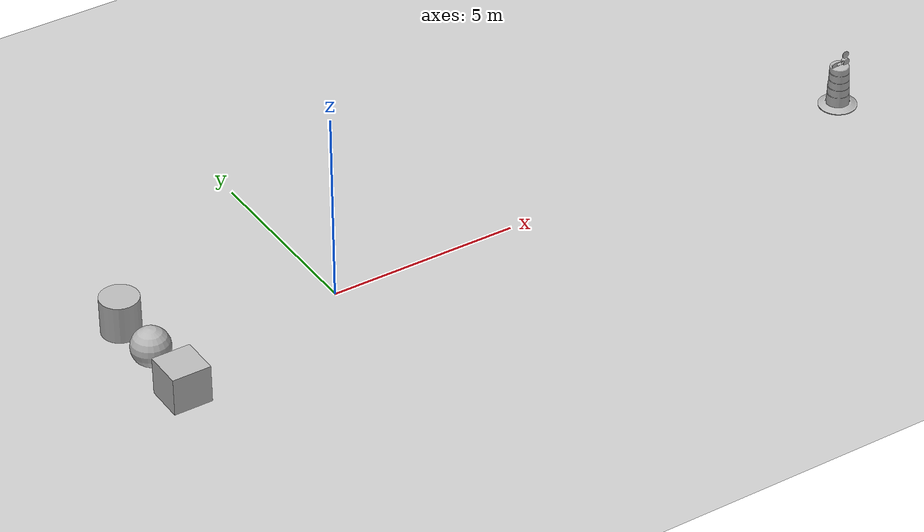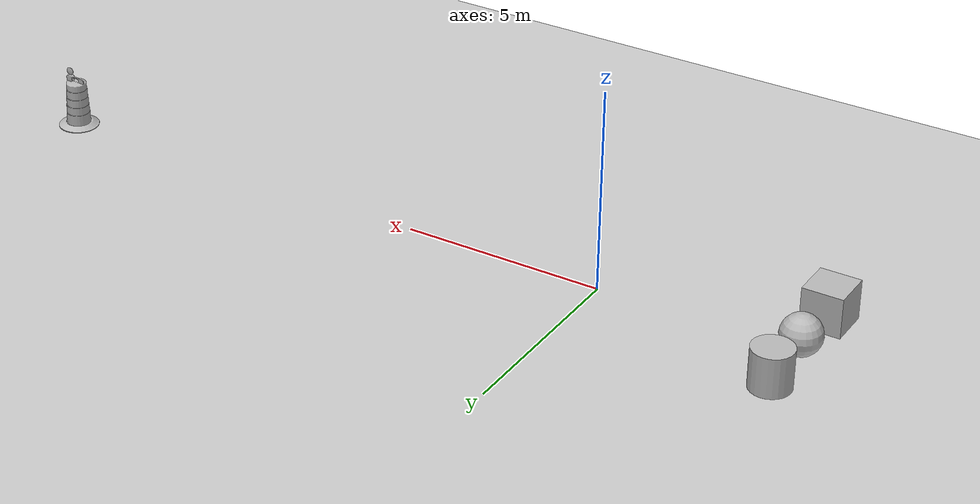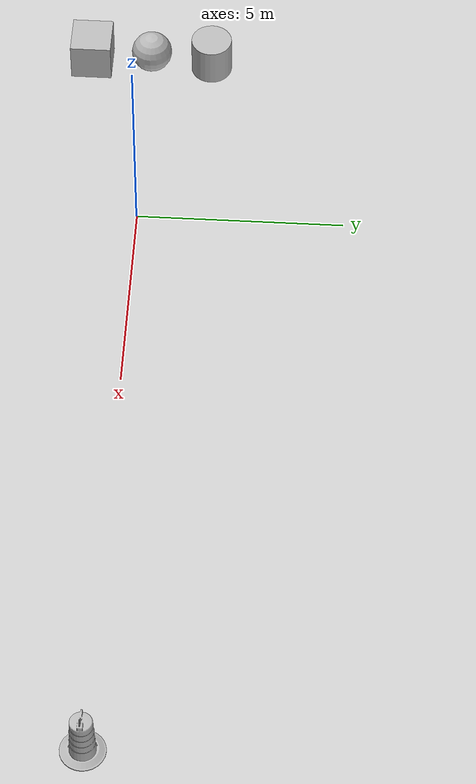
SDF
<sdf version="1.7">
 <world name="default">
  <light name="sun" type="directional">
   <pose>0 0 10 0 -0 0</pose>
   <diffuse>0.8 0.8 0.8 1</diffuse>
   <specular>0.2 0.2 0.2 1</specular>
   <attenuation>
    <range>1000</range>
    <constant>0.9</constant>
    <linear>0.01</linear>
    <quadratic>0.001</quadratic>
   </attenuation>
   <direction>-0.5 0.1 -0.9</direction>
   <spot><inner_angle>0</inner_angle><outer_angle>0</outer_angle><falloff>0</falloff></spot>
  </light>
  <model name="ground_plane">
   <static>1</static>
   <link name="link">
    <collision name="collision">
     <geometry><plane><normal>0 0 1</normal><size>100 100</size></plane></geometry>
     <surface>
      <contact><collide_bitmask>65535</collide_bitmask></contact>
      <friction><ode><mu>100</mu><mu2>50</mu2></ode></friction>
     </surface>
    </collision>
    <visual name="visual">
     <cast_shadows>0</cast_shadows>
     <geometry><plane><normal>0 0 1</normal><size>100 100</size></plane></geometry>
     <material>
      <script><uri>file://media/materials/scripts/gazebo.material</uri><name>Gazebo/Grey</name></script>
     </material>
    </visual>
   </link>
  </model>
  <gravity>0 0 -9.8</gravity>
  <magnetic_field>6e-06 2.3e-05 -4.2e-05</magnetic_field>
  <atmosphere type="adiabatic"/>
  <physics type="ode">
   <max_step_size>0.001</max_step_size>
   <real_time_factor>1</real_time_factor>
   <real_time_update_rate>1000</real_time_update_rate>
  </physics>
  <scene><ambient>0.4 0.4 0.4 1</ambient><background>0.7 0.7 0.7 1</background><shadows>1</shadows></scene>
  <spherical_coordinates>
   <surface_model>EARTH_WGS84</surface_model>
   <latitude_deg>0</latitude_deg>
   <longitude_deg>0</longitude_deg>
   <elevation>0</elevation>
   <heading_deg>0</heading_deg>
  </spherical_coordinates>
  <model name="Construction Barrel">
   <link name="link">
    <inertial>
     <pose>0 0 0.4 0 -0 0</pose>
     <mass>500</mass>
     <inertia><ixx>51.2096</ixx><iyy>51.2096</iyy><izz>25</izz><ixy>0</ixy><ixz>0</ixz><iyz>0</iyz></inertia>
    </inertial>
    <collision name="collision">
     <geometry><mesh><uri>model://construction_barrel/meshes/construction_barrel.dae</uri></mesh></geometry>
    </collision>
    <visual name="visual">
     <geometry><mesh><uri>model://construction_barrel/meshes/construction_barrel.dae</uri></mesh></geometry>
    </visual>
   </link>
   <pose>15 -8e-06 -1e-06 -3e-06 -1e-06 -8e-06</pose>
  </model>
  <model name="textured_shapes">
   <pose>-5 0 0.5 0 -0 0</pose>
   <link name="box">
    <pose>0 -1.5 0 0 -0 0</pose>
    <collision name="collision"><geometry><box><size>1 1 1</size></box></geometry></collision>
    <visual name="visual">
     <geometry><box><size>1 1 1</size></box></geometry>
     <material>
      <script>
       <uri>model://textured_shapes/materials/scripts</uri>
       <uri>model://textured_shapes/materials/textures</uri>
       <name>TexturedShape/Squares</name>
      </script>
     </material>
    </visual>
    <inertial>
     <inertia><ixx>1</ixx><ixy>0</ixy><ixz>0</ixz><iyy>1</iyy><iyz>0</iyz><izz>1</izz></inertia>
     <mass>1</mass>
    </inertial>
   </link>
   <link name="sphere">
    <collision name="collision"><geometry><sphere><radius>0.5</radius></sphere></geometry></collision>
    <visual name="visual">
     <geometry><sphere><radius>0.5</radius></sphere></geometry>
     <material>
      <script>
       <uri>model://textured_shapes/materials/scripts</uri>
       <uri>model://textured_shapes/materials/textures</uri>
       <name>TexturedShape/Squares</name>
      </script>
     </material>
    </visual>
    <inertial>
     <inertia><ixx>1</ixx><ixy>0</ixy><ixz>0</ixz><iyy>1</iyy><iyz>0</iyz><izz>1</izz></inertia>
     <mass>1</mass>
    </inertial>
   </link>
   <link name="cylinder">
    <pose>0 1.5 0 0 -0 0</pose>
    <collision name="collision">
     <geometry><cylinder><radius>0.5</radius><length>1</length></cylinder></geometry>
    </collision>
    <visual name="visual">
     <geometry><cylinder><radius>0.5</radius><length>1</length></cylinder></geometry>
     <material>
      <script>
       <uri>model://textured_shapes/materials/scripts</uri>
       <uri>model://textured_shapes/materials/textures</uri>
       <name>TexturedShape/Squares</name>
      </script>
     </material>
    </visual>
    <inertial>
     <inertia><ixx>1</ixx><ixy>0</ixy><ixz>0</ixz><iyy>1</iyy><iyz>0</iyz><izz>1</izz></inertia>
     <mass>1</mass>
    </inertial>
   </link>
  </model>
 </world>
</sdf>
